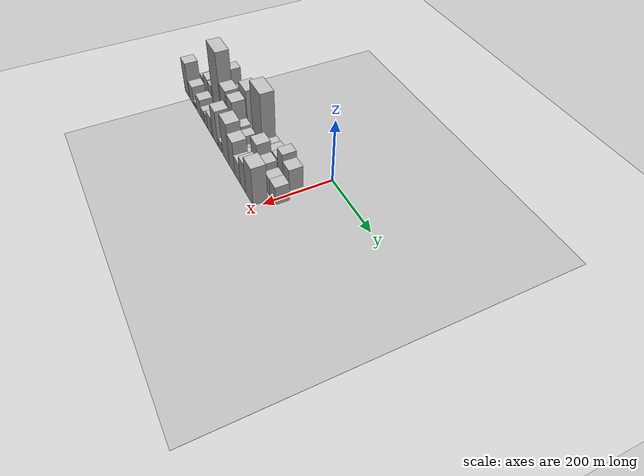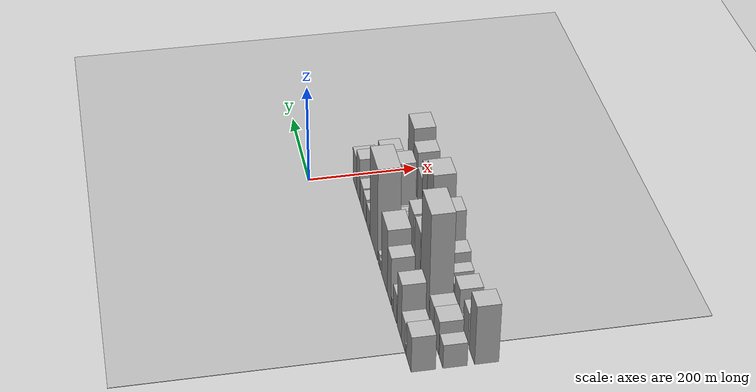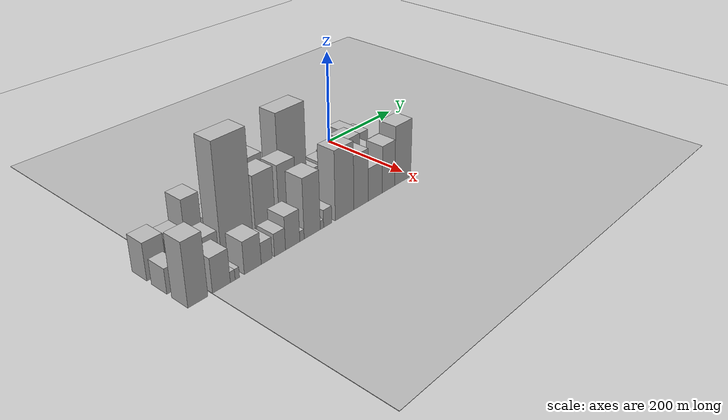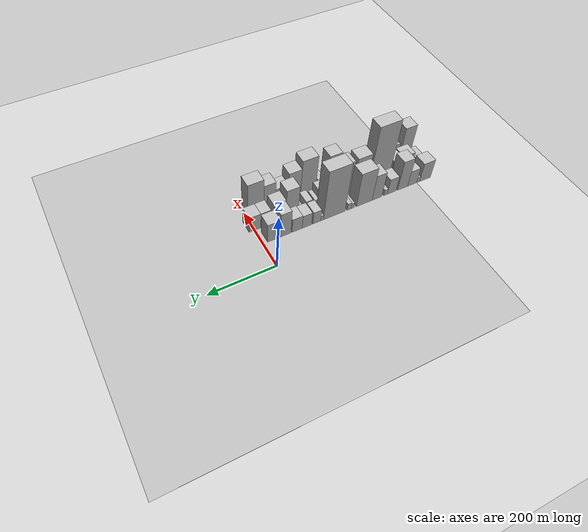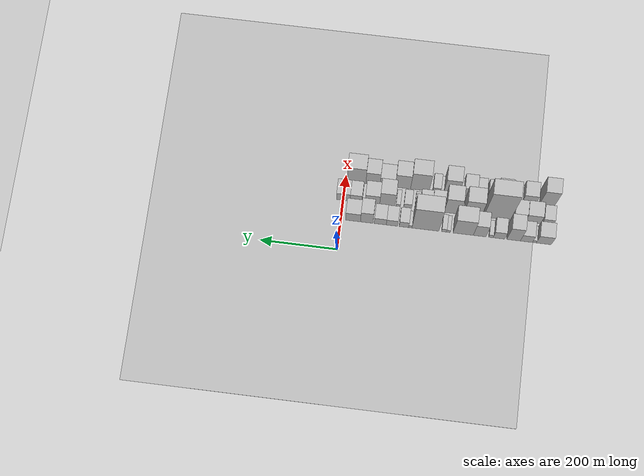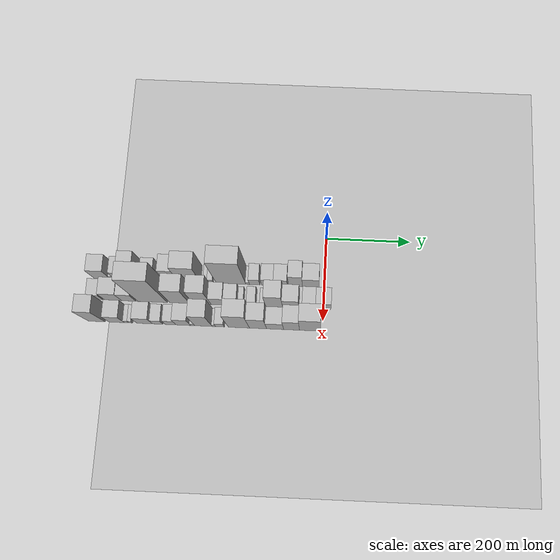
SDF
<sdf version="1.6">
 <world name="default">
  <include><name>ground_plane_1</name><uri>model://HANNAS_ground_plane</uri></include>
  <include>
   <name>ground_plane_2</name>
   <uri>model://HANNAS_ground_plane</uri>
   <pose>100 0 0  0 0 0</pose>
  </include>
  <model name="building_1">
   <static>1</static>
   <pose>100.0000 -528.5926 0 0.000000 0.000000 0.000000</pose>
   <link name="link">
    <pose>0 0 36.00 0 0 0</pose>
    <collision name="collision"><geometry><box><size>40.0000 38.8148 72.0000</size></box></geometry></collision>
    <visual name="visual">
     <cast_shadows>0</cast_shadows>
     <geometry><box><size>40.0000 38.8148 72.0000</size></box></geometry>
     <material>
      <script>
       <uri>model://HANNAS_wall/materials/scripts</uri>
       <uri>model://HANNAS_wall/materials/textures</uri>
       <name>vrc/HANNAS_wall</name>
      </script>
     </material>
    </visual>
   </link>
  </model>
  <model name="building_2">
   <static>1</static>
   <pose>100.0000 -504.1947 0 0.000000 0.000000 0.000000</pose>
   <link name="link">
    <pose>0 0 10.50 0 0 0</pose>
    <collision name="collision"><geometry><box><size>40.0000 9.9809 21.0000</size></box></geometry></collision>
    <visual name="visual">
     <cast_shadows>0</cast_shadows>
     <geometry><box><size>40.0000 9.9809 21.0000</size></box></geometry>
     <material>
      <script>
       <uri>model://HANNAS_wall/materials/scripts</uri>
       <uri>model://HANNAS_wall/materials/textures</uri>
       <name>vrc/HANNAS_wall</name>
      </script>
     </material>
    </visual>
   </link>
  </model>
  <model name="building_3">
   <static>1</static>
   <pose>100.0000 -483.4879 0 0.000000 0.000000 0.000000</pose>
   <link name="link">
    <pose>0 0 30.00 0 0 0</pose>
    <collision name="collision"><geometry><box><size>40.0000 31.4326 60.0000</size></box></geometry></collision>
    <visual name="visual">
     <cast_shadows>0</cast_shadows>
     <geometry><box><size>40.0000 31.4326 60.0000</size></box></geometry>
     <material>
      <script>
       <uri>model://HANNAS_wall/materials/scripts</uri>
       <uri>model://HANNAS_wall/materials/textures</uri>
       <name>vrc/HANNAS_wall</name>
      </script>
     </material>
    </visual>
   </link>
  </model>
  <model name="building_4">
   <static>1</static>
   <pose>100.0000 -450.0955 0 0.000000 0.000000 0.000000</pose>
   <link name="link">
    <pose>0 0 57.00 0 0 0</pose>
    <collision name="collision"><geometry><box><size>40.0000 35.3523 114.0000</size></box></geometry></collision>
    <visual name="visual">
     <cast_shadows>0</cast_shadows>
     <geometry><box><size>40.0000 35.3523 114.0000</size></box></geometry>
     <material>
      <script>
       <uri>model://HANNAS_wall/materials/scripts</uri>
       <uri>model://HANNAS_wall/materials/textures</uri>
       <name>vrc/HANNAS_wall</name>
      </script>
     </material>
    </visual>
   </link>
  </model>
  <model name="building_5">
   <static>1</static>
   <pose>100.0000 -412.2819 0 0.000000 0.000000 0.000000</pose>
   <link name="link">
    <pose>0 0 30.00 0 0 0</pose>
    <collision name="collision"><geometry><box><size>40.0000 30.2750 60.0000</size></box></geometry></collision>
    <visual name="visual">
     <cast_shadows>0</cast_shadows>
     <geometry><box><size>40.0000 30.2750 60.0000</size></box></geometry>
     <material>
      <script>
       <uri>model://HANNAS_wall/materials/scripts</uri>
       <uri>model://HANNAS_wall/materials/textures</uri>
       <name>vrc/HANNAS_wall</name>
      </script>
     </material>
    </visual>
   </link>
  </model>
  <model name="building_6">
   <static>1</static>
   <pose>100.0000 -391.4086 0 0.000000 0.000000 0.000000</pose>
   <link name="link">
    <pose>0 0 12.00 0 0 0</pose>
    <collision name="collision"><geometry><box><size>40.0000 11.4717 24.0000</size></box></geometry></collision>
    <visual name="visual">
     <cast_shadows>0</cast_shadows>
     <geometry><box><size>40.0000 11.4717 24.0000</size></box></geometry>
     <material>
      <script>
       <uri>model://HANNAS_wall/materials/scripts</uri>
       <uri>model://HANNAS_wall/materials/textures</uri>
       <name>vrc/HANNAS_wall</name>
      </script>
     </material>
    </visual>
   </link>
  </model>
  <model name="building_7">
   <static>1</static>
   <pose>100.0000 -362.1813 0 0.000000 0.000000 0.000000</pose>
   <link name="link">
    <pose>0 0 49.50 0 0 0</pose>
    <collision name="collision"><geometry><box><size>40.0000 32.9830 99.0000</size></box></geometry></collision>
    <visual name="visual">
     <cast_shadows>0</cast_shadows>
     <geometry><box><size>40.0000 32.9830 99.0000</size></box></geometry>
     <material>
      <script>
       <uri>model://HANNAS_wall/materials/scripts</uri>
       <uri>model://HANNAS_wall/materials/textures</uri>
       <name>vrc/HANNAS_wall</name>
      </script>
     </material>
    </visual>
   </link>
  </model>
  <model name="building_8">
   <static>1</static>
   <pose>100.0000 -319.3064 0 0.000000 0.000000 0.000000</pose>
   <link name="link">
    <pose>0 0 66.00 0 0 0</pose>
    <collision name="collision"><geometry><box><size>40.0000 52.7667 132.0000</size></box></geometry></collision>
    <visual name="visual">
     <cast_shadows>0</cast_shadows>
     <geometry><box><size>40.0000 52.7667 132.0000</size></box></geometry>
     <material>
      <script>
       <uri>model://HANNAS_wall/materials/scripts</uri>
       <uri>model://HANNAS_wall/materials/textures</uri>
       <name>vrc/HANNAS_wall</name>
      </script>
     </material>
    </visual>
   </link>
  </model>
  <model name="building_9">
   <static>1</static>
   <pose>100.0000 -280.9358 0 0.000000 0.000000 0.000000</pose>
   <link name="link">
    <pose>0 0 10.50 0 0 0</pose>
    <collision name="collision"><geometry><box><size>40.0000 9.9746 21.0000</size></box></geometry></collision>
    <visual name="visual">
     <cast_shadows>0</cast_shadows>
     <geometry><box><size>40.0000 9.9746 21.0000</size></box></geometry>
     <material>
      <script>
       <uri>model://HANNAS_wall/materials/scripts</uri>
       <uri>model://HANNAS_wall/materials/textures</uri>
       <name>vrc/HANNAS_wall</name>
      </script>
     </material>
    </visual>
   </link>
  </model>
  <model name="building_10">
   <static>1</static>
   <pose>100.0000 -269.5451 0 0.000000 0.000000 0.000000</pose>
   <link name="link">
    <pose>0 0 13.50 0 0 0</pose>
    <collision name="collision"><geometry><box><size>40.0000 12.8068 27.0000</size></box></geometry></collision>
    <visual name="visual">
     <cast_shadows>0</cast_shadows>
     <geometry><box><size>40.0000 12.8068 27.0000</size></box></geometry>
     <material>
      <script>
       <uri>model://HANNAS_wall/materials/scripts</uri>
       <uri>model://HANNAS_wall/materials/textures</uri>
       <name>vrc/HANNAS_wall</name>
      </script>
     </material>
    </visual>
   </link>
  </model>
  <model name="building_11">
   <static>1</static>
   <pose>100.0000 -221.1472 0 0.000000 0.000000 0.000000</pose>
   <link name="link">
    <pose>0 0 96.00 0 0 0</pose>
    <collision name="collision"><geometry><box><size>40.0000 69.9890 192.0000</size></box></geometry></collision>
    <visual name="visual">
     <cast_shadows>0</cast_shadows>
     <geometry><box><size>40.0000 69.9890 192.0000</size></box></geometry>
     <material>
      <script>
       <uri>model://HANNAS_wall/materials/scripts</uri>
       <uri>model://HANNAS_wall/materials/textures</uri>
       <name>vrc/HANNAS_wall</name>
      </script>
     </material>
    </visual>
   </link>
  </model>
  <model name="building_12">
   <static>1</static>
   <pose>100.0000 -181.7832 0 0.000000 0.000000 0.000000</pose>
   <link name="link">
    <pose>0 0 10.50 0 0 0</pose>
    <collision name="collision"><geometry><box><size>40.0000 8.7391 21.0000</size></box></geometry></collision>
    <visual name="visual">
     <cast_shadows>0</cast_shadows>
     <geometry><box><size>40.0000 8.7391 21.0000</size></box></geometry>
     <material>
      <script>
       <uri>model://HANNAS_wall/materials/scripts</uri>
       <uri>model://HANNAS_wall/materials/textures</uri>
       <name>vrc/HANNAS_wall</name>
      </script>
     </material>
    </visual>
   </link>
  </model>
  <model name="building_13">
   <static>1</static>
   <pose>100.0000 -165.0696 0 0.000000 0.000000 0.000000</pose>
   <link name="link">
    <pose>0 0 24.00 0 0 0</pose>
    <collision name="collision"><geometry><box><size>40.0000 24.6880 48.0000</size></box></geometry></collision>
    <visual name="visual">
     <cast_shadows>0</cast_shadows>
     <geometry><box><size>40.0000 24.6880 48.0000</size></box></geometry>
     <material>
      <script>
       <uri>model://HANNAS_wall/materials/scripts</uri>
       <uri>model://HANNAS_wall/materials/textures</uri>
       <name>vrc/HANNAS_wall</name>
      </script>
     </material>
    </visual>
   </link>
  </model>
  <model name="building_14">
   <static>1</static>
   <pose>100.0000 -133.9013 0 0.000000 0.000000 0.000000</pose>
   <link name="link">
    <pose>0 0 25.50 0 0 0</pose>
    <collision name="collision"><geometry><box><size>40.0000 29.6487 51.0000</size></box></geometry></collision>
    <visual name="visual">
     <cast_shadows>0</cast_shadows>
     <geometry><box><size>40.0000 29.6487 51.0000</size></box></geometry>
     <material>
      <script>
       <uri>model://HANNAS_wall/materials/scripts</uri>
       <uri>model://HANNAS_wall/materials/textures</uri>
       <name>vrc/HANNAS_wall</name>
      </script>
     </material>
    </visual>
   </link>
  </model>
  <model name="building_15">
   <static>1</static>
   <pose>100.0000 -103.3088 0 0.000000 0.000000 0.000000</pose>
   <link name="link">
    <pose>0 0 27.00 0 0 0</pose>
    <collision name="collision"><geometry><box><size>40.0000 31.5362 54.0000</size></box></geometry></collision>
    <visual name="visual">
     <cast_shadows>0</cast_shadows>
     <geometry><box><size>40.0000 31.5362 54.0000</size></box></geometry>
     <material>
      <script>
       <uri>model://HANNAS_wall/materials/scripts</uri>
       <uri>model://HANNAS_wall/materials/textures</uri>
       <name>vrc/HANNAS_wall</name>
      </script>
     </material>
    </visual>
   </link>
  </model>
  <model name="building_16">
   <static>1</static>
   <pose>100.0000 -68.3457 0 0.000000 0.000000 0.000000</pose>
   <link name="link">
    <pose>0 0 46.50 0 0 0</pose>
    <collision name="collision"><geometry><box><size>40.0000 32.3901 93.0000</size></box></geometry></collision>
    <visual name="visual">
     <cast_shadows>0</cast_shadows>
     <geometry><box><size>40.0000 32.3901 93.0000</size></box></geometry>
     <material>
      <script>
       <uri>model://HANNAS_wall/materials/scripts</uri>
       <uri>model://HANNAS_wall/materials/textures</uri>
       <name>vrc/HANNAS_wall</name>
      </script>
     </material>
    </visual>
   </link>
  </model>
  <model name="building_17">
   <static>1</static>
   <pose>100.0000 -32.6215 0 0.000000 0.000000 0.000000</pose>
   <link name="link">
    <pose>0 0 36.00 0 0 0</pose>
    <collision name="collision"><geometry><box><size>40.0000 39.0583 72.0000</size></box></geometry></collision>
    <visual name="visual">
     <cast_shadows>0</cast_shadows>
     <geometry><box><size>40.0000 39.0583 72.0000</size></box></geometry>
     <material>
      <script>
       <uri>model://HANNAS_wall/materials/scripts</uri>
       <uri>model://HANNAS_wall/materials/textures</uri>
       <name>vrc/HANNAS_wall</name>
      </script>
     </material>
    </visual>
   </link>
  </model>
  <model name="building_34">
   <static>1</static>
   <pose>152.0000 -533.8637 0 0.000000 0.000000 0.000000</pose>
   <link name="link">
    <pose>0 0 24.00 0 0 0</pose>
    <collision name="collision"><geometry><box><size>40.0000 28.2725 48.0000</size></box></geometry></collision>
    <visual name="visual">
     <cast_shadows>0</cast_shadows>
     <geometry><box><size>40.0000 28.2725 48.0000</size></box></geometry>
     <material>
      <script>
       <uri>model://HANNAS_wall/materials/scripts</uri>
       <uri>model://HANNAS_wall/materials/textures</uri>
       <name>vrc/HANNAS_wall</name>
      </script>
     </material>
    </visual>
   </link>
  </model>
  <model name="building_35">
   <static>1</static>
   <pose>152.0000 -495.7774 0 0.000000 0.000000 0.000000</pose>
   <link name="link">
    <pose>0 0 34.50 0 0 0</pose>
    <collision name="collision"><geometry><box><size>40.0000 39.9002 69.0000</size></box></geometry></collision>
    <visual name="visual">
     <cast_shadows>0</cast_shadows>
     <geometry><box><size>40.0000 39.9002 69.0000</size></box></geometry>
     <material>
      <script>
       <uri>model://HANNAS_wall/materials/scripts</uri>
       <uri>model://HANNAS_wall/materials/textures</uri>
       <name>vrc/HANNAS_wall</name>
      </script>
     </material>
    </visual>
   </link>
  </model>
  <model name="building_36">
   <static>1</static>
   <pose>152.0000 -458.9496 0 0.000000 0.000000 0.000000</pose>
   <link name="link">
    <pose>0 0 33.00 0 0 0</pose>
    <collision name="collision"><geometry><box><size>40.0000 33.7553 66.0000</size></box></geometry></collision>
    <visual name="visual">
     <cast_shadows>0</cast_shadows>
     <geometry><box><size>40.0000 33.7553 66.0000</size></box></geometry>
     <material>
      <script>
       <uri>model://HANNAS_wall/materials/scripts</uri>
       <uri>model://HANNAS_wall/materials/textures</uri>
       <name>vrc/HANNAS_wall</name>
      </script>
     </material>
    </visual>
   </link>
  </model>
  <model name="building_37">
   <static>1</static>
   <pose>152.0000 -402.2357 0 0.000000 0.000000 0.000000</pose>
   <link name="link">
    <pose>0 0 112.50 0 0 0</pose>
    <collision name="collision"><geometry><box><size>40.0000 69.6724 225.0000</size></box></geometry></collision>
    <visual name="visual">
     <cast_shadows>0</cast_shadows>
     <geometry><box><size>40.0000 69.6724 225.0000</size></box></geometry>
     <material>
      <script>
       <uri>model://HANNAS_wall/materials/scripts</uri>
       <uri>model://HANNAS_wall/materials/textures</uri>
       <name>vrc/HANNAS_wall</name>
      </script>
     </material>
    </visual>
   </link>
  </model>
  <model name="building_38">
   <static>1</static>
   <pose>152.0000 -338.3357 0 0.000000 0.000000 0.000000</pose>
   <link name="link">
    <pose>0 0 66.00 0 0 0</pose>
    <collision name="collision"><geometry><box><size>40.0000 46.1275 132.0000</size></box></geometry></collision>
    <visual name="visual">
     <cast_shadows>0</cast_shadows>
     <geometry><box><size>40.0000 46.1275 132.0000</size></box></geometry>
     <material>
      <script>
       <uri>model://HANNAS_wall/materials/scripts</uri>
       <uri>model://HANNAS_wall/materials/textures</uri>
       <name>vrc/HANNAS_wall</name>
      </script>
     </material>
    </visual>
   </link>
  </model>
  <model name="building_39">
   <static>1</static>
   <pose>152.0000 -285.3753 0 0.000000 0.000000 0.000000</pose>
   <link name="link">
    <pose>0 0 64.50 0 0 0</pose>
    <collision name="collision"><geometry><box><size>40.0000 41.7935 129.0000</size></box></geometry></collision>
    <visual name="visual">
     <cast_shadows>0</cast_shadows>
     <geometry><box><size>40.0000 41.7935 129.0000</size></box></geometry>
     <material>
      <script>
       <uri>model://HANNAS_wall/materials/scripts</uri>
       <uri>model://HANNAS_wall/materials/textures</uri>
       <name>vrc/HANNAS_wall</name>
      </script>
     </material>
    </visual>
   </link>
  </model>
  <model name="building_40">
   <static>1</static>
   <pose>152.0000 -247.9603 0 0.000000 0.000000 0.000000</pose>
   <link name="link">
    <pose>0 0 33.00 0 0 0</pose>
    <collision name="collision"><geometry><box><size>40.0000 33.0364 66.0000</size></box></geometry></collision>
    <visual name="visual">
     <cast_shadows>0</cast_shadows>
     <geometry><box><size>40.0000 33.0364 66.0000</size></box></geometry>
     <material>
      <script>
       <uri>model://HANNAS_wall/materials/scripts</uri>
       <uri>model://HANNAS_wall/materials/textures</uri>
       <name>vrc/HANNAS_wall</name>
      </script>
     </material>
    </visual>
   </link>
  </model>
  <model name="building_41">
   <static>1</static>
   <pose>152.0000 -215.9658 0 0.000000 0.000000 0.000000</pose>
   <link name="link">
    <pose>0 0 28.50 0 0 0</pose>
    <collision name="collision"><geometry><box><size>40.0000 30.9527 57.0000</size></box></geometry></collision>
    <visual name="visual">
     <cast_shadows>0</cast_shadows>
     <geometry><box><size>40.0000 30.9527 57.0000</size></box></geometry>
     <material>
      <script>
       <uri>model://HANNAS_wall/materials/scripts</uri>
       <uri>model://HANNAS_wall/materials/textures</uri>
       <name>vrc/HANNAS_wall</name>
      </script>
     </material>
    </visual>
   </link>
  </model>
  <model name="building_42">
   <static>1</static>
   <pose>152.0000 -194.0145 0 0.000000 0.000000 0.000000</pose>
   <link name="link">
    <pose>0 0 13.50 0 0 0</pose>
    <collision name="collision"><geometry><box><size>40.0000 12.9498 27.0000</size></box></geometry></collision>
    <visual name="visual">
     <cast_shadows>0</cast_shadows>
     <geometry><box><size>40.0000 12.9498 27.0000</size></box></geometry>
     <material>
      <script>
       <uri>model://HANNAS_wall/materials/scripts</uri>
       <uri>model://HANNAS_wall/materials/textures</uri>
       <name>vrc/HANNAS_wall</name>
      </script>
     </material>
    </visual>
   </link>
  </model>
  <model name="building_43">
   <static>1</static>
   <pose>152.0000 -169.1416 0 0.000000 0.000000 0.000000</pose>
   <link name="link">
    <pose>0 0 18.00 0 0 0</pose>
    <collision name="collision"><geometry><box><size>40.0000 20.7961 36.0000</size></box></geometry></collision>
    <visual name="visual">
     <cast_shadows>0</cast_shadows>
     <geometry><box><size>40.0000 20.7961 36.0000</size></box></geometry>
     <material>
      <script>
       <uri>model://HANNAS_wall/materials/scripts</uri>
       <uri>model://HANNAS_wall/materials/textures</uri>
       <name>vrc/HANNAS_wall</name>
      </script>
     </material>
    </visual>
   </link>
  </model>
  <model name="building_44">
   <static>1</static>
   <pose>152.0000 -144.1185 0 0.000000 0.000000 0.000000</pose>
   <link name="link">
    <pose>0 0 12.00 0 0 0</pose>
    <collision name="collision"><geometry><box><size>40.0000 11.2501 24.0000</size></box></geometry></collision>
    <visual name="visual">
     <cast_shadows>0</cast_shadows>
     <geometry><box><size>40.0000 11.2501 24.0000</size></box></geometry>
     <material>
      <script>
       <uri>model://HANNAS_wall/materials/scripts</uri>
       <uri>model://HANNAS_wall/materials/textures</uri>
       <name>vrc/HANNAS_wall</name>
      </script>
     </material>
    </visual>
   </link>
  </model>
  <model name="building_45">
   <static>1</static>
   <pose>152.0000 -115.7189 0 0.000000 0.000000 0.000000</pose>
   <link name="link">
    <pose>0 0 55.50 0 0 0</pose>
    <collision name="collision"><geometry><box><size>40.0000 39.5491 111.0000</size></box></geometry></collision>
    <visual name="visual">
     <cast_shadows>0</cast_shadows>
     <geometry><box><size>40.0000 39.5491 111.0000</size></box></geometry>
     <material>
      <script>
       <uri>model://HANNAS_wall/materials/scripts</uri>
       <uri>model://HANNAS_wall/materials/textures</uri>
       <name>vrc/HANNAS_wall</name>
      </script>
     </material>
    </visual>
   </link>
  </model>
  <model name="building_46">
   <static>1</static>
   <pose>152.0000 -76.9028 0 0.000000 0.000000 0.000000</pose>
   <link name="link">
    <pose>0 0 37.50 0 0 0</pose>
    <collision name="collision"><geometry><box><size>40.0000 38.0831 75.0000</size></box></geometry></collision>
    <visual name="visual">
     <cast_shadows>0</cast_shadows>
     <geometry><box><size>40.0000 38.0831 75.0000</size></box></geometry>
     <material>
      <script>
       <uri>model://HANNAS_wall/materials/scripts</uri>
       <uri>model://HANNAS_wall/materials/textures</uri>
       <name>vrc/HANNAS_wall</name>
      </script>
     </material>
    </visual>
   </link>
  </model>
  <model name="building_47">
   <static>1</static>
   <pose>152.0000 -34.3094 0 0.000000 0.000000 0.000000</pose>
   <link name="link">
    <pose>0 0 30.00 0 0 0</pose>
    <collision name="collision"><geometry><box><size>40.0000 31.1038 60.0000</size></box></geometry></collision>
    <visual name="visual">
     <cast_shadows>0</cast_shadows>
     <geometry><box><size>40.0000 31.1038 60.0000</size></box></geometry>
     <material>
      <script>
       <uri>model://HANNAS_wall/materials/scripts</uri>
       <uri>model://HANNAS_wall/materials/textures</uri>
       <name>vrc/HANNAS_wall</name>
      </script>
     </material>
    </visual>
   </link>
  </model>
  <model name="building_48">
   <static>1</static>
   <pose>152.0000 -0.8622 0 0.000000 0.000000 0.000000</pose>
   <link name="link">
    <pose>0 0 30.00 0 0 0</pose>
    <collision name="collision"><geometry><box><size>40.0000 35.7905 60.0000</size></box></geometry></collision>
    <visual name="visual">
     <cast_shadows>0</cast_shadows>
     <geometry><box><size>40.0000 35.7905 60.0000</size></box></geometry>
     <material>
      <script>
       <uri>model://HANNAS_wall/materials/scripts</uri>
       <uri>model://HANNAS_wall/materials/textures</uri>
       <name>vrc/HANNAS_wall</name>
      </script>
     </material>
    </visual>
   </link>
  </model>
  <model name="building_64">
   <static>1</static>
   <pose>204.0000 -528.4999 0 0.000000 0.000000 0.000000</pose>
   <link name="link">
    <pose>0 0 60.00 0 0 0</pose>
    <collision name="collision"><geometry><box><size>40.0000 39.0002 120.0000</size></box></geometry></collision>
    <visual name="visual">
     <cast_shadows>0</cast_shadows>
     <geometry><box><size>40.0000 39.0002 120.0000</size></box></geometry>
     <material>
      <script>
       <uri>model://HANNAS_wall/materials/scripts</uri>
       <uri>model://HANNAS_wall/materials/textures</uri>
       <name>vrc/HANNAS_wall</name>
      </script>
     </material>
    </visual>
   </link>
  </model>
  <model name="building_65">
   <static>1</static>
   <pose>204.0000 -481.8135 0 0.000000 0.000000 0.000000</pose>
   <link name="link">
    <pose>0 0 33.00 0 0 0</pose>
    <collision name="collision"><geometry><box><size>40.0000 36.3725 66.0000</size></box></geometry></collision>
    <visual name="visual">
     <cast_shadows>0</cast_shadows>
     <geometry><box><size>40.0000 36.3725 66.0000</size></box></geometry>
     <material>
      <script>
       <uri>model://HANNAS_wall/materials/scripts</uri>
       <uri>model://HANNAS_wall/materials/textures</uri>
       <name>vrc/HANNAS_wall</name>
      </script>
     </material>
    </visual>
   </link>
  </model>
  <model name="building_66">
   <static>1</static>
   <pose>204.0000 -458.6010 0 0.000000 0.000000 0.000000</pose>
   <link name="link">
    <pose>0 0 10.50 0 0 0</pose>
    <collision name="collision"><geometry><box><size>40.0000 10.0527 21.0000</size></box></geometry></collision>
    <visual name="visual">
     <cast_shadows>0</cast_shadows>
     <geometry><box><size>40.0000 10.0527 21.0000</size></box></geometry>
     <material>
      <script>
       <uri>model://HANNAS_wall/materials/scripts</uri>
       <uri>model://HANNAS_wall/materials/textures</uri>
       <name>vrc/HANNAS_wall</name>
      </script>
     </material>
    </visual>
   </link>
  </model>
  <model name="building_67">
   <static>1</static>
   <pose>204.0000 -448.9390 0 0.000000 0.000000 0.000000</pose>
   <link name="link">
    <pose>0 0 10.50 0 0 0</pose>
    <collision name="collision"><geometry><box><size>40.0000 9.2712 21.0000</size></box></geometry></collision>
    <visual name="visual">
     <cast_shadows>0</cast_shadows>
     <geometry><box><size>40.0000 9.2712 21.0000</size></box></geometry>
     <material>
      <script>
       <uri>model://HANNAS_wall/materials/scripts</uri>
       <uri>model://HANNAS_wall/materials/textures</uri>
       <name>vrc/HANNAS_wall</name>
      </script>
     </material>
    </visual>
   </link>
  </model>
  <model name="building_68">
   <static>1</static>
   <pose>204.0000 -415.8961 0 0.000000 0.000000 0.000000</pose>
   <link name="link">
    <pose>0 0 31.50 0 0 0</pose>
    <collision name="collision"><geometry><box><size>40.0000 36.8146 63.0000</size></box></geometry></collision>
    <visual name="visual">
     <cast_shadows>0</cast_shadows>
     <geometry><box><size>40.0000 36.8146 63.0000</size></box></geometry>
     <material>
      <script>
       <uri>model://HANNAS_wall/materials/scripts</uri>
       <uri>model://HANNAS_wall/materials/textures</uri>
       <name>vrc/HANNAS_wall</name>
      </script>
     </material>
    </visual>
   </link>
  </model>
  <model name="building_69">
   <static>1</static>
   <pose>204.0000 -385.1619 0 0.000000 0.000000 0.000000</pose>
   <link name="link">
    <pose>0 0 21.00 0 0 0</pose>
    <collision name="collision"><geometry><box><size>40.0000 24.6538 42.0000</size></box></geometry></collision>
    <visual name="visual">
     <cast_shadows>0</cast_shadows>
     <geometry><box><size>40.0000 24.6538 42.0000</size></box></geometry>
     <material>
      <script>
       <uri>model://HANNAS_wall/materials/scripts</uri>
       <uri>model://HANNAS_wall/materials/textures</uri>
       <name>vrc/HANNAS_wall</name>
      </script>
     </material>
    </visual>
   </link>
  </model>
  <model name="building_70">
   <static>1</static>
   <pose>204.0000 -355.1180 0 0.000000 0.000000 0.000000</pose>
   <link name="link">
    <pose>0 0 22.50 0 0 0</pose>
    <collision name="collision"><geometry><box><size>40.0000 25.4339 45.0000</size></box></geometry></collision>
    <visual name="visual">
     <cast_shadows>0</cast_shadows>
     <geometry><box><size>40.0000 25.4339 45.0000</size></box></geometry>
     <material>
      <script>
       <uri>model://HANNAS_wall/materials/scripts</uri>
       <uri>model://HANNAS_wall/materials/textures</uri>
       <name>vrc/HANNAS_wall</name>
      </script>
     </material>
    </visual>
   </link>
  </model>
  <model name="building_71">
   <static>1</static>
   <pose>204.0000 -325.5068 0 0.000000 0.000000 0.000000</pose>
   <link name="link">
    <pose>0 0 33.00 0 0 0</pose>
    <collision name="collision"><geometry><box><size>40.0000 33.7886 66.0000</size></box></geometry></collision>
    <visual name="visual">
     <cast_shadows>0</cast_shadows>
     <geometry><box><size>40.0000 33.7886 66.0000</size></box></geometry>
     <material>
      <script>
       <uri>model://HANNAS_wall/materials/scripts</uri>
       <uri>model://HANNAS_wall/materials/textures</uri>
       <name>vrc/HANNAS_wall</name>
      </script>
     </material>
    </visual>
   </link>
  </model>
  <model name="building_72">
   <static>1</static>
   <pose>204.0000 -303.3809 0 0.000000 0.000000 0.000000</pose>
   <link name="link">
    <pose>0 0 10.50 0 0 0</pose>
    <collision name="collision"><geometry><box><size>40.0000 10.4632 21.0000</size></box></geometry></collision>
    <visual name="visual">
     <cast_shadows>0</cast_shadows>
     <geometry><box><size>40.0000 10.4632 21.0000</size></box></geometry>
     <material>
      <script>
       <uri>model://HANNAS_wall/materials/scripts</uri>
       <uri>model://HANNAS_wall/materials/textures</uri>
       <name>vrc/HANNAS_wall</name>
      </script>
     </material>
    </visual>
   </link>
  </model>
  <model name="building_73">
   <static>1</static>
   <pose>204.0000 -278.1472 0 0.000000 0.000000 0.000000</pose>
   <link name="link">
    <pose>0 0 60.00 0 0 0</pose>
    <collision name="collision"><geometry><box><size>40.0000 40.0043 120.0000</size></box></geometry></collision>
    <visual name="visual">
     <cast_shadows>0</cast_shadows>
     <geometry><box><size>40.0000 40.0043 120.0000</size></box></geometry>
     <material>
      <script>
       <uri>model://HANNAS_wall/materials/scripts</uri>
       <uri>model://HANNAS_wall/materials/textures</uri>
       <name>vrc/HANNAS_wall</name>
      </script>
     </material>
    </visual>
   </link>
  </model>
  <model name="building_74">
   <static>1</static>
   <pose>204.0000 -254.0464 0 0.000000 0.000000 0.000000</pose>
   <link name="link">
    <pose>0 0 9.00 0 0 0</pose>
    <collision name="collision"><geometry><box><size>40.0000 8.1972 18.0000</size></box></geometry></collision>
    <visual name="visual">
     <cast_shadows>0</cast_shadows>
     <geometry><box><size>40.0000 8.1972 18.0000</size></box></geometry>
     <material>
      <script>
       <uri>model://HANNAS_wall/materials/scripts</uri>
       <uri>model://HANNAS_wall/materials/textures</uri>
       <name>vrc/HANNAS_wall</name>
      </script>
     </material>
    </visual>
   </link>
  </model>
  <model name="building_75">
   <static>1</static>
   <pose>204.0000 -239.4715 0 0.000000 0.000000 0.000000</pose>
   <link name="link">
    <pose>0 0 18.00 0 0 0</pose>
    <collision name="collision"><geometry><box><size>40.0000 20.9526 36.0000</size></box></geometry></collision>
    <visual name="visual">
     <cast_shadows>0</cast_shadows>
     <geometry><box><size>40.0000 20.9526 36.0000</size></box></geometry>
     <material>
      <script>
       <uri>model://HANNAS_wall/materials/scripts</uri>
       <uri>model://HANNAS_wall/materials/textures</uri>
       <name>vrc/HANNAS_wall</name>
      </script>
     </material>
    </visual>
   </link>
  </model>
  <model name="building_76">
   <static>1</static>
   <pose>204.0000 -195.3403 0 0.000000 0.000000 0.000000</pose>
   <link name="link">
    <pose>0 0 70.50 0 0 0</pose>
    <collision name="collision"><geometry><box><size>40.0000 49.3098 141.0000</size></box></geometry></collision>
    <visual name="visual">
     <cast_shadows>0</cast_shadows>
     <geometry><box><size>40.0000 49.3098 141.0000</size></box></geometry>
     <material>
      <script>
       <uri>model://HANNAS_wall/materials/scripts</uri>
       <uri>model://HANNAS_wall/materials/textures</uri>
       <name>vrc/HANNAS_wall</name>
      </script>
     </material>
    </visual>
   </link>
  </model>
  <model name="building_77">
   <static>1</static>
   <pose>204.0000 -150.6203 0 0.000000 0.000000 0.000000</pose>
   <link name="link">
    <pose>0 0 55.50 0 0 0</pose>
    <collision name="collision"><geometry><box><size>40.0000 40.1301 111.0000</size></box></geometry></collision>
    <visual name="visual">
     <cast_shadows>0</cast_shadows>
     <geometry><box><size>40.0000 40.1301 111.0000</size></box></geometry>
     <material>
      <script>
       <uri>model://HANNAS_wall/materials/scripts</uri>
       <uri>model://HANNAS_wall/materials/textures</uri>
       <name>vrc/HANNAS_wall</name>
      </script>
     </material>
    </visual>
   </link>
  </model>
  <model name="building_78">
   <static>1</static>
   <pose>204.0000 -110.7484 0 0.000000 0.000000 0.000000</pose>
   <link name="link">
    <pose>0 0 34.50 0 0 0</pose>
    <collision name="collision"><geometry><box><size>40.0000 39.6138 69.0000</size></box></geometry></collision>
    <visual name="visual">
     <cast_shadows>0</cast_shadows>
     <geometry><box><size>40.0000 39.6138 69.0000</size></box></geometry>
     <material>
      <script>
       <uri>model://HANNAS_wall/materials/scripts</uri>
       <uri>model://HANNAS_wall/materials/textures</uri>
       <name>vrc/HANNAS_wall</name>
      </script>
     </material>
    </visual>
   </link>
  </model>
  <model name="building_79">
   <static>1</static>
   <pose>204.0000 -72.4520 0 0.000000 0.000000 0.000000</pose>
   <link name="link">
    <pose>0 0 49.50 0 0 0</pose>
    <collision name="collision"><geometry><box><size>40.0000 36.9790 99.0000</size></box></geometry></collision>
    <visual name="visual">
     <cast_shadows>0</cast_shadows>
     <geometry><box><size>40.0000 36.9790 99.0000</size></box></geometry>
     <material>
      <script>
       <uri>model://HANNAS_wall/materials/scripts</uri>
       <uri>model://HANNAS_wall/materials/textures</uri>
       <name>vrc/HANNAS_wall</name>
      </script>
     </material>
    </visual>
   </link>
  </model>
  <model name="building_80">
   <static>1</static>
   <pose>204.0000 -29.4859 0 0.000000 0.000000 0.000000</pose>
   <link name="link">
    <pose>0 0 63.00 0 0 0</pose>
    <collision name="collision"><geometry><box><size>40.0000 48.9532 126.0000</size></box></geometry></collision>
    <visual name="visual">
     <cast_shadows>0</cast_shadows>
     <geometry><box><size>40.0000 48.9532 126.0000</size></box></geometry>
     <material>
      <script>
       <uri>model://HANNAS_wall/materials/scripts</uri>
       <uri>model://HANNAS_wall/materials/textures</uri>
       <name>vrc/HANNAS_wall</name>
      </script>
     </material>
    </visual>
   </link>
  </model>
 </world>
</sdf>
